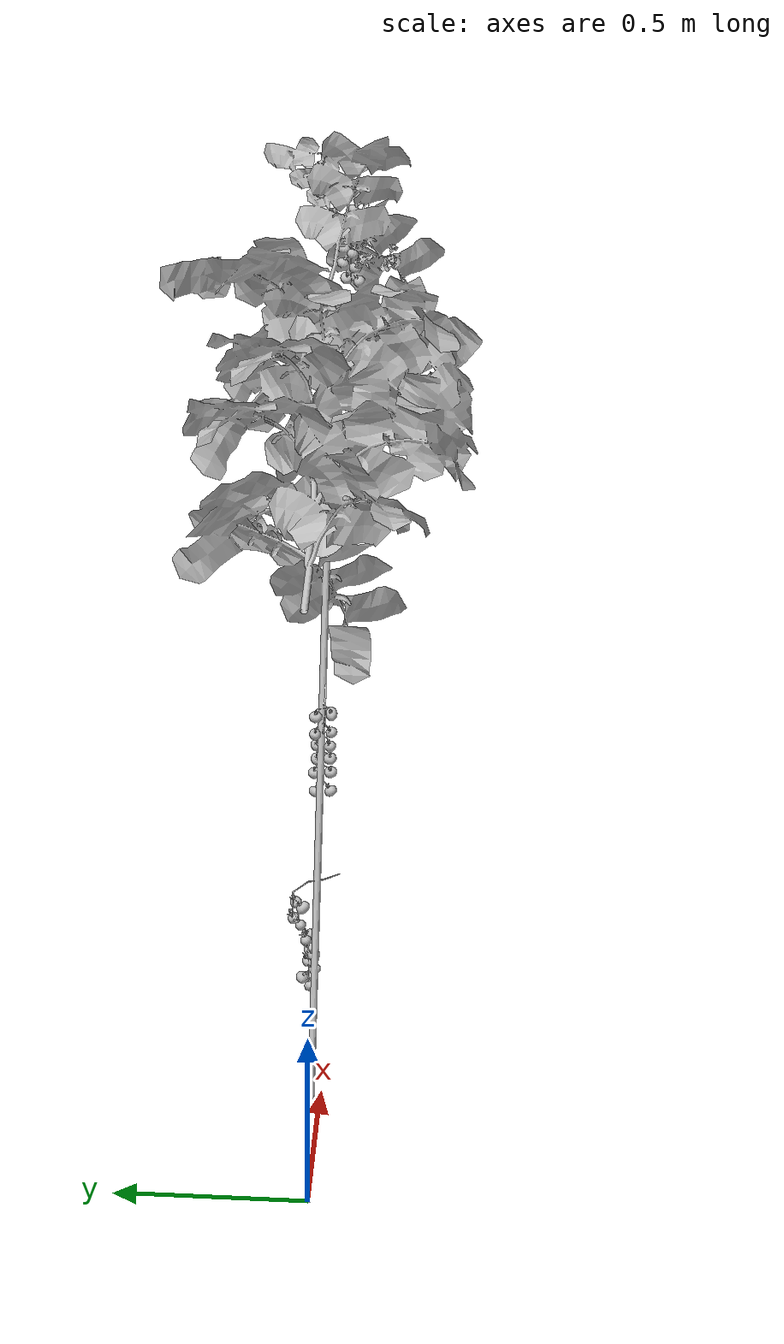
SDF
<?xml version="1.0"?>
<sdf version="1.6">
  <model name="tomato_vine_repo_v1">
    <static>true</static>
    <link name="link">
      <collision name="collision_trunk">
        <geometry><cylinder><radius>0.014</radius><length>1.654</length></cylinder></geometry>
        <pose>0.3181 0 0.7635 0 0.3947 0</pose>
      </collision>
      <visual name="plant">
        <geometry>
          <mesh>
            <uri>model://tomato_vine_repo_v1/meshes/tomato_vine_repo_v1.dae</uri>
          </mesh>
        </geometry>
      </visual>
    </link>
  </model>
</sdf>
